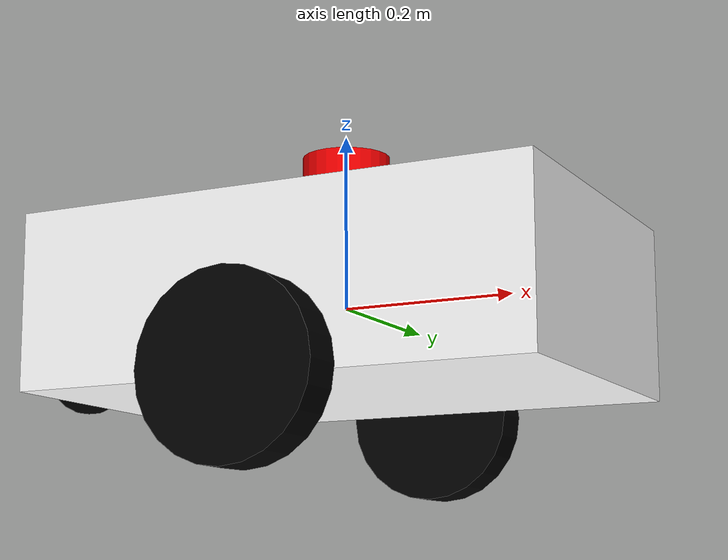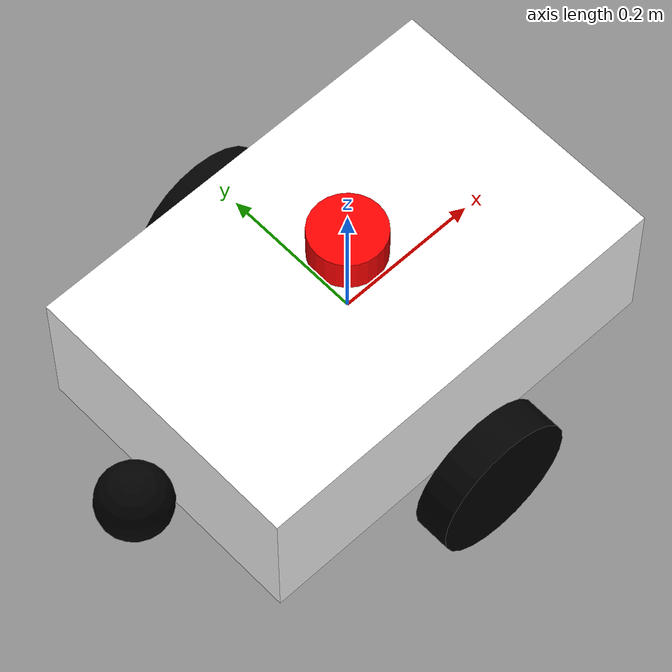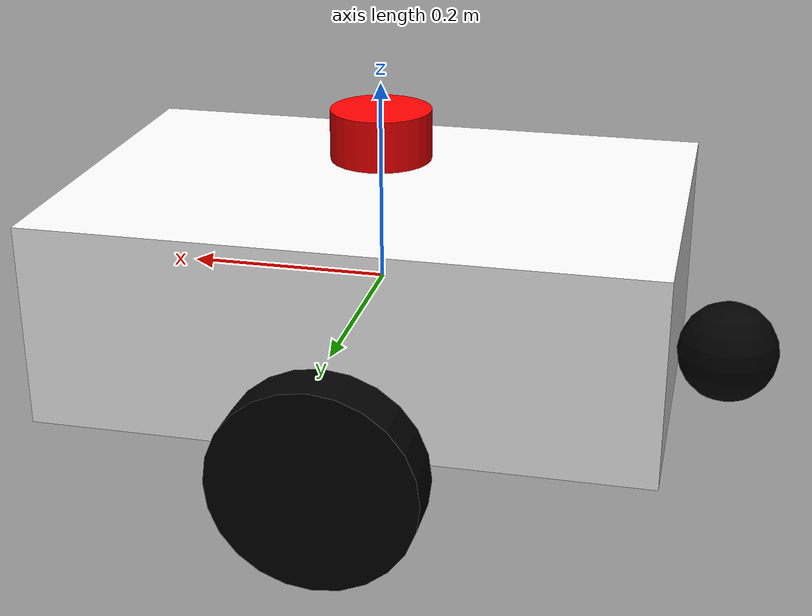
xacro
<?xml version="1.0"?>
<robot xmlns:xacro="http://www.ros.org/wiki/xacro" name="autonomous_robot">

  <!-- Robot parameters -->
  <xacro:property name="base_width" value="0.4"/>
  <xacro:property name="base_length" value="0.6"/>
  <xacro:property name="base_height" value="0.2"/>
  <xacro:property name="wheel_radius" value="0.1"/>
  <xacro:property name="wheel_width" value="0.05"/>
  <xacro:property name="wheel_separation" value="0.5"/>

  <!-- Materials -->
  <material name="white">
    <color rgba="1 1 1 1"/>
  </material>
  <material name="black">
    <color rgba="0 0 0 1"/>
  </material>
  <material name="red">
    <color rgba="1 0 0 1"/>
  </material>
  <material name="blue">
    <color rgba="0 0 1 1"/>
  </material>

  <!-- Base Link -->
  <link name="base_link">
    <visual>
      <geometry>
        <box size="${base_length} ${base_width} ${base_height}"/>
      </geometry>
      <material name="white"/>
    </visual>
    <collision>
      <geometry>
        <box size="${base_length} ${base_width} ${base_height}"/>
      </geometry>
    </collision>
    <inertial>
      <mass value="5.0"/>
      <origin xyz="0 0 0" rpy="0 0 0"/>
      <inertia ixx="0.1" ixy="0.0" ixz="0.0"
               iyy="0.1" iyz="0.0"
               izz="0.1"/>
    </inertial>
  </link>

  <!-- Left Wheel -->
  <link name="left_wheel">
    <visual>
      <geometry>
        <cylinder radius="${wheel_radius}" length="${wheel_width}"/>
      </geometry>
      <material name="black"/>
    </visual>
    <collision>
      <geometry>
        <cylinder radius="${wheel_radius}" length="${wheel_width}"/>
      </geometry>
    </collision>
    <inertial>
      <mass value="1.0"/>
      <origin xyz="0 0 0" rpy="0 0 0"/>
      <inertia ixx="0.01" ixy="0.0" ixz="0.0"
               iyy="0.01" iyz="0.0"
               izz="0.01"/>
    </inertial>
  </link>

  <!-- Right Wheel -->
  <link name="right_wheel">
    <visual>
      <geometry>
        <cylinder radius="${wheel_radius}" length="${wheel_width}"/>
      </geometry>
      <material name="black"/>
    </visual>
    <collision>
      <geometry>
        <cylinder radius="${wheel_radius}" length="${wheel_width}"/>
      </geometry>
    </collision>
    <inertial>
      <mass value="1.0"/>
      <origin xyz="0 0 0" rpy="0 0 0"/>
      <inertia ixx="0.01" ixy="0.0" ixz="0.0"
               iyy="0.01" iyz="0.0"
               izz="0.01"/>
    </inertial>
  </link>

  <!-- Front Caster Wheel -->
  <link name="front_caster">
    <visual>
      <geometry>
        <sphere radius="0.05"/>
      </geometry>
      <material name="black"/>
    </visual>
    <collision>
      <geometry>
        <sphere radius="0.05"/>
      </geometry>
    </collision>
    <inertial>
      <mass value="0.1"/>
      <origin xyz="0 0 0" rpy="0 0 0"/>
      <inertia ixx="0.0001" ixy="0.0" ixz="0.0"
               iyy="0.0001" iyz="0.0"
               izz="0.0001"/>
    </inertial>
  </link>

  <!-- Rear Caster Wheel -->
  <link name="rear_caster">
    <visual>
      <geometry>
        <sphere radius="0.05"/>
      </geometry>
      <material name="black"/>
    </visual>
    <collision>
      <geometry>
        <sphere radius="0.05"/>
      </geometry>
    </collision>
    <inertial>
      <mass value="0.1"/>
      <origin xyz="0 0 0" rpy="0 0 0"/>
      <inertia ixx="0.0001" ixy="0.0" ixz="0.0"
               iyy="0.0001" iyz="0.0"
               izz="0.0001"/>
    </inertial>
  </link>

  <!-- LiDAR Link -->
  <link name="lidar_link">
    <visual>
      <geometry>
        <cylinder radius="0.05" length="0.05"/>
      </geometry>
      <material name="red"/>
    </visual>
    <collision>
      <geometry>
        <cylinder radius="0.05" length="0.05"/>
      </geometry>
    </collision>
    <inertial>
      <mass value="0.1"/>
      <origin xyz="0 0 0" rpy="0 0 0"/>
      <inertia ixx="0.001" ixy="0.0" ixz="0.0"
               iyy="0.001" iyz="0.0"
               izz="0.001"/>
    </inertial>
  </link>

  <!-- Joints -->
  <joint name="left_wheel_joint" type="continuous">
    <parent link="base_link"/>
    <child link="left_wheel"/>
    <origin xyz="0 ${wheel_separation/2} -${base_height/2}" rpy="-${pi/2} 0 0"/>
    <axis xyz="0 0 1"/>
  </joint>

  <joint name="right_wheel_joint" type="continuous">
    <parent link="base_link"/>
    <child link="right_wheel"/>
    <origin xyz="0 -${wheel_separation/2} -${base_height/2}" rpy="-${pi/2} 0 0"/>
    <axis xyz="0 0 1"/>
  </joint>

  <joint name="front_caster_joint" type="fixed">
    <parent link="base_link"/>
    <child link="front_caster"/>
    <origin xyz="${base_length/2 - 0.05} 0 -${base_height/2 - 0.05}" rpy="0 0 0"/>
  </joint>

  <joint name="rear_caster_joint" type="fixed">
    <parent link="base_link"/>
    <child link="rear_caster"/>
    <origin xyz="-${base_length/2 + 0.05} 0 -${base_height/2 - 0.05}" rpy="0 0 0"/>
  </joint>

  <joint name="lidar_joint" type="fixed">
    <parent link="base_link"/>
    <child link="lidar_link"/>
    <origin xyz="0 0 ${base_height/2 + 0.05}" rpy="0 0 0"/>
  </joint>

  <!-- Gazebo plugins -->
  <gazebo>
    <plugin name="differential_drive_controller" filename="libgazebo_ros_diff_drive.so">
      <left_joint>left_wheel_joint</left_joint>
      <right_joint>right_wheel_joint</right_joint>
      <wheel_separation>${wheel_separation}</wheel_separation>
      <wheel_diameter>${2*wheel_radius}</wheel_diameter>
      <max_wheel_torque>20</max_wheel_torque>
      <max_wheel_acceleration>1.0</max_wheel_acceleration>
      <command_topic>cmd_vel</command_topic>
      <odometry_topic>odom</odometry_topic>
      <odometry_frame>odom</odometry_frame>
      <robot_base_frame>base_link</robot_base_frame>
      <publish_odom>true</publish_odom>
      <publish_odom_tf>true</publish_odom_tf>
      <publish_wheel_tf>false</publish_wheel_tf>
    </plugin>
  </gazebo>

  <!-- Caster wheel physics -->
  <gazebo reference="front_caster">
    <mu1>0.0</mu1>
    <mu2>0.0</mu2>
    <kp>1000000.0</kp>
    <kd>10.0</kd>
    <minDepth>0.001</minDepth>
    <maxVel>0.1</maxVel>
    <material>Gazebo/Black</material>
  </gazebo>

  <gazebo reference="rear_caster">
    <mu1>0.0</mu1>
    <mu2>0.0</mu2>
    <kp>1000000.0</kp>
    <kd>10.0</kd>
    <minDepth>0.001</minDepth>
    <maxVel>0.1</maxVel>
    <material>Gazebo/Black</material>
  </gazebo>

  <!-- LiDAR sensor -->
  <gazebo reference="lidar_link">
    <sensor type="ray" name="lidar_sensor">
      <pose>0 0 0 0 0 0</pose>
      <visualize>true</visualize>
      <update_rate>10</update_rate>
      <ray>
        <scan>
          <horizontal>
            <samples>360</samples>
            <resolution>1</resolution>
            <min_angle>-3.14159</min_angle>
            <max_angle>3.14159</max_angle>
          </horizontal>
        </scan>
        <range>
          <min>0.1</min>
          <max>10.0</max>
          <resolution>0.01</resolution>
        </range>
        <noise>
          <type>gaussian</type>
          <mean>0.0</mean>
          <stddev>0.01</stddev>
        </noise>
      </ray>
      <plugin name="gazebo_ros_laser" filename="libgazebo_ros_ray_sensor.so">
        <ros>
          <remapping>~/out:=scan</remapping>
        </ros>
        <output_type>sensor_msgs/LaserScan</output_type>
        <frame_name>lidar_link</frame_name>
      </plugin>
    </sensor>
  </gazebo>

</robot>
